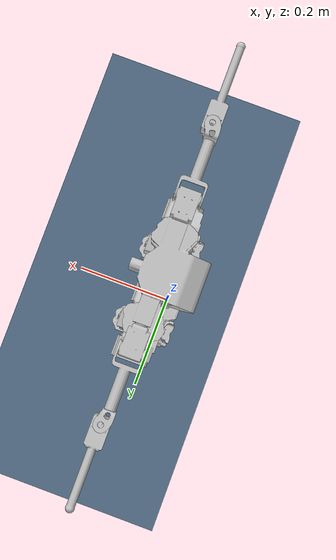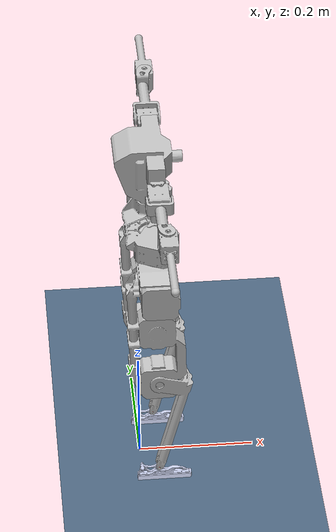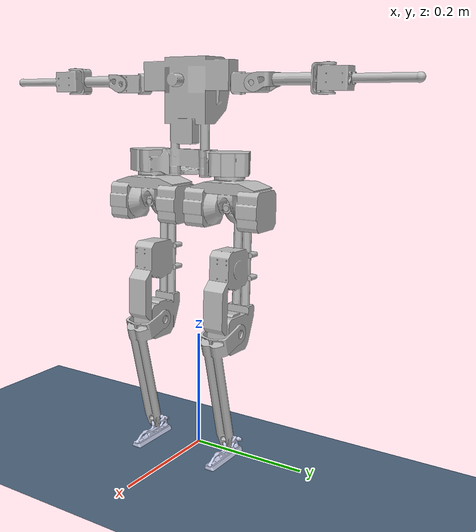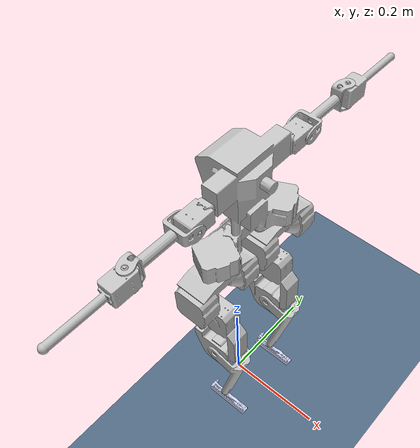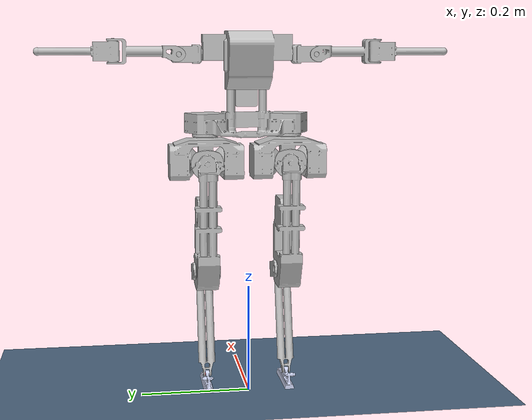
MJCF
<mujoco model="bruce_op">
    <compiler angle="radian" meshdir="meshes" autolimits="false" inertiafromgeom="false"/>

    <option timestep="0.001" gravity="0 0 -9.81" tolerance="1e-05" cone="elliptic" jacobian="dense" solver="Newton"  noslip_iterations="10" integrator="Euler" iterations="30" impratio="10.0"/>
    <option>
      <flag override="enable" gravity="enable"/>
    </option>

    <asset>
        <mesh name="base_link" file="base_link.STL"/>
        <mesh name="ankle_pitch_link_l" file="ankle_pitch_link_l.stl"/>
        <mesh name="ankle_pitch_link_r" file="ankle_pitch_link_r.stl"/>
        <mesh name="elbow_pitch_link_l" file="elbow_pitch_link_l.stl"/>
        <mesh name="elbow_pitch_link_r" file="elbow_pitch_link_r.stl"/>
        <mesh name="hip_pitch_link_l" file="hip_pitch_link_l.stl"/>
        <mesh name="hip_pitch_link_r" file="hip_pitch_link_r.stl"/>
        <mesh name="hip_roll_link_l" file="hip_roll_link_l.stl"/>
        <mesh name="hip_roll_link_r" file="hip_roll_link_r.stl"/>
        <mesh name="hip_yaw_link_l" file="hip_yaw_link_l.stl"/>
        <mesh name="hip_yaw_link_r" file="hip_yaw_link_r.stl"/>
        <mesh name="knee_pitch_link_l" file="knee_pitch_link_l.stl"/>
        <mesh name="knee_pitch_link_r" file="knee_pitch_link_r.stl"/>
        <mesh name="shoulder_pitch_link_l" file="shoulder_pitch_link_l.stl"/>
        <mesh name="shoulder_pitch_link_r" file="shoulder_pitch_link_r.stl"/>
        <mesh name="shoulder_roll_link_l" file="shoulder_roll_link_l.stl"/>
        <mesh name="shoulder_roll_link_r" file="shoulder_roll_link_r.stl"/>

        <texture name="texplane" type="2d" builtin="checker" width="512" height="512" rgb1="0.1 0.2 0.3" rgb2="0.5 0.6 0.7" mark="edge" markrgb="1 1 1" />
		    <material name="MatLink"  reflectance="0.5" specular="1" shininess="0.3" rgba="0.5 0.5 0.5 1"/>
        <material name="MatPlane" texture="texplane" reflectance="0" texrepeat="1 1" texuniform="true"/>
    </asset>

    <default>
      <joint limited="false" damping="2" armature="0.1" stiffness="0" frictionloss="0.2"/>
      <motor gear="1 0 0 0 0 0" ctrllimited="false" ctrlrange="-100 100"/>
    </default>

    <!-- Ref:https://github.com/google-deepmind/mujoco_menagerie/blob/main/robotis_op3/op3.xml -->

    <visual>
      <global fovy="45" linewidth="2" glow="0.3"/>
      <quality shadowsize="4096" numslices="48"/>
      <map stiffness="50" stiffnessrot="100"/>
      <scale forcewidth="0.075" contactwidth="0.2" contactheight="0.1" connect="0.1" com="0.2" jointlength="0.25" jointwidth="0.05"
             actuatorlength="0.5" actuatorwidth="0.3" framelength="1" framewidth="0.03"/>
      <rgba haze="0.6 0.8 0.9 1" force="1 0 0 0.5" com="0 0 1 1"/>
    </visual>

    <worldbody>
        <light name="spotlight" mode="targetbodycom" target="body_link" pos="10 -10 10" diffuse="1.0 1.0 1.0" specular="0.0 0.0 0.0" castshadow="false"/>

		    <geom name="Ground" type="plane" pos="0 0 0" material="MatPlane" size="0 0 1" condim="3"/>

        <body name="body_link" pos="0 0 0.47">
    		<freejoint/>
            <inertial pos="0.02259605 -0.00011305 0.06140054" mass="1.31688922" diaginertia="0.0133543 0.01023631 0.005471"/>
            <geom name="base_link" type="mesh" mesh="base_link" rgba="0.752941176 0.752941176 0.752941176 1"/>

            <!-- LEFT LEG -->
            <body name="hip_yaw_link_l" pos="0.029216 0.0758557 -0.039765" quat="0.707107 0 0 -0.707107">
                <inertial pos="0 -0.00020849 0.00528032" quat="0.518836 0.480432 0.518756 0.480506" mass="0.637386" diaginertia="0.00161868 0.00152047 0.0004852"/>
                <joint name="hip_yaw_l" pos="0 0 0" axis="0 0 1" limited="true" range="-0.785375 0.785375"/>
                <geom type="mesh" rgba="0.752941 0.752941 0.752941 1" mesh="hip_yaw_link_l" contype="0" conaffinity="0"/>
                <body name="hip_roll_link_l" quat="0.500001 -0.499999 0.500001 0.499999">
                  <inertial pos="-1.51e-07 0 6.88e-06" mass="0.05" diaginertia="1e-05 1e-05 1e-05"/>
                  <joint name="hip_roll_l" pos="0 0 0" axis="0 0 1" limited="true" range="-0.785375 0.785375"/>
                  <geom type="mesh" rgba="0.752941 0.752941 0.752941 1" mesh="hip_roll_link_l" contype="0" conaffinity="0"/>
                  <body name="hip_pitch_link_l" quat="0.707107 0.707107 0 0">
                    <inertial pos="0.142447 -0.00832054 0.00049317" quat="-0.002203 0.702817 0.024599 0.710942" mass="0.720628" diaginertia="0.018195 0.0179541 0.000461885"/>
                    <joint name="hip_pitch_l" pos="0 0 0" axis="0 0 1" limited="true" range="-1.57075 1.57075"/>
                    <geom type="mesh" rgba="0.752941 0.752941 0.752941 1" mesh="hip_pitch_link_l"/>
                    <body name="knee_pitch_link_l" pos="0.204949 0 0">
                      <inertial pos="0.0730996 0.0178102 -0.00219767" quat="0.0505999 0.70058 0.00930476 0.711716" mass="0.0952654" diaginertia="0.00107995 0.00101966 0.000104635"/>
                      <joint name="knee_pitch_l" pos="0 0 0" axis="0 0 1" limited="true" range="-1.57075 1.57075"/>
                      <geom type="mesh" rgba="0.752941 0.752941 0.752941 1" mesh="knee_pitch_link_l"/>
                      <body name="ankle_pitch_link_l" pos="0.199881 0 0">
                        <inertial pos="0.0123398 0.00253004 -0.00030441" quat="0.455603 0.546571 -0.442281 0.545962" mass="0.0274829" diaginertia="2.60237e-05 2.09939e-05 5.69233e-06"/>
                        <joint name="ankle_pitch_l" pos="0 0 0" axis="0 0 1" limited="true" range="-1.57075 1.57075"/>
                        <geom type="mesh" rgba="0.792157 0.819608 0.933333 1" mesh="ankle_pitch_link_l"/>
        								<site name="lfoot_sensor" type="sphere" pos="0 0 0" size="0.005" rgba="1 0 0 1"/>
                      </body>
                    </body>
                  </body>
                </body>
              </body>

            <!-- RIGHT LEG -->
            <body name="hip_yaw_link_r" pos="0.029216 -0.0758557 -0.039765" quat="0.707107 0 0 -0.707107">
                <inertial pos="2.71e-06 -0.00024824 0.00522427" quat="0.517691 0.482114 0.518083 0.480784" mass="0.637563" diaginertia="0.0016174 0.00152078 0.000485406"/>
                <joint name="hip_yaw_r" pos="0 0 0" axis="0 0 1" limited="true" range="-0.785375 0.785375"/>
                <geom type="mesh" rgba="0.752941 0.752941 0.752941 1" mesh="hip_yaw_link_r" contype="0" conaffinity="0"/>
                <body name="hip_roll_link_r" quat="0.5 -0.5 0.5 0.5">
                  <inertial pos="-1.51e-07 0 6.88e-06" mass="0.05" diaginertia="1e-05 1e-05 1e-05"/>
                  <joint name="hip_roll_r" pos="0 0 0" axis="0 0 1" limited="true" range="-0.785375 0.785375"/>
                  <geom type="mesh" rgba="0.752941 0.752941 0.752941 1" mesh="hip_roll_link_r" contype="0" conaffinity="0"/>
                  <body name="hip_pitch_link_r" quat="0.707107 0.707107 0 0">
                    <inertial pos="0.140714 -0.0086817 0.00167429" quat="-0.0210718 0.710934 0.00543456 0.702922" mass="0.72849" diaginertia="0.0181996 0.0179488 0.000479326"/>
                    <joint name="hip_pitch_r" pos="0 0 0" axis="0 0 1" limited="true" range="-1.57075 1.57075"/>
                    <geom type="mesh" rgba="0.752941 0.752941 0.752941 1" mesh="hip_pitch_link_r"/>
                    <body name="knee_pitch_link_r" pos="0.204949 0 0">
                      <inertial pos="0.0729308 0.0174645 0.00216432" quat="-0.0124752 0.71085 -0.0538621 0.701167" mass="0.0956654" diaginertia="0.00108397 0.00102192 0.000106307"/>
                      <joint name="knee_pitch_r" pos="0 0 0" axis="0 0 1" limited="true" range="-1.57075 1.57075"/>
                      <geom type="mesh" rgba="0.752941 0.752941 0.752941 1" mesh="knee_pitch_link_r"/>
                      <body name="ankle_pitch_link_r" pos="0.199881 0 0">
                        <inertial pos="0.0120775 0.0019746 0.00029511" quat="0.443128 0.545146 -0.456612 0.545855" mass="0.0276265" diaginertia="2.58838e-05 2.09859e-05 5.64035e-06"/>
                        <joint name="ankle_pitch_r" pos="0 0 0" axis="0 0 1" limited="true" range="-1.57075 1.57075"/>
                        <geom type="mesh" rgba="0.792157 0.819608 0.933333 1" mesh="ankle_pitch_link_r"/>
        								<site name="rfoot_sensor" type="sphere" pos="0 0 0" size="0.005" rgba="1 0 0 1"/>
                      </body>
                    </body>
                  </body>
                </body>
              </body>

              <!-- LEFT ARM -->
            <body name="shoulder_pitch_link_l" pos="0.029216 0.12375 0.152985" quat="0.5 -0.5 0.5 0.5">
              <inertial pos="0 0.00038323 -0.0141368" quat="0.999984 -0.0057278 0 0" mass="0.0493169" diaginertia="2.507e-05 2.40321e-05 8.31794e-06"/>
              <joint name="shoulder_pitch_l" pos="0 0 0" axis="0 0 1" limited="true" range="-1.57075 1.57075"/>
              <geom type="mesh" rgba="0.752941 0.752941 0.752941 1" mesh="shoulder_pitch_link_l"/>
              <body name="shoulder_roll_link_l" quat="0.5 0.5 -0.5 0.5">
                <inertial pos="0.0570939 0.00419463 0.00094155" quat="0.207025 0.693936 0.171489 0.667971" mass="0.0313652" diaginertia="0.000165195 0.000164406 9.52871e-06"/>
                <joint name="shoulder_roll_l" pos="0 0 0" axis="0 0 1" limited="true" range="-1.57075 1.57075"/>
                <geom type="mesh" rgba="0.752941 0.752941 0.752941 1" mesh="shoulder_roll_link_l"/>
                <body name="elbow_pitch_link_l" pos="0.1146 0.005 0.005" quat="0.707107 -0.707107 0 0">
                  <inertial pos="0.0217884 0 0.0003604" quat="0.499291 0.500708 0.500708 0.499291" mass="0.0524404" diaginertia="7.261e-05 7.10305e-05 7.52949e-06"/>
                  <joint name="elbow_pitch_l" pos="0 0 0" axis="0 0 1" limited="true" range="-1.57075 1.57075"/>
                  <geom type="mesh" rgba="0.752941 0.752941 0.752941 1" mesh="elbow_pitch_link_l"/>
                </body>
              </body>
            </body>

          <!-- RIGHT ARM -->
          <body name="shoulder_pitch_link_r" pos="0.029216 -0.12375 0.152985" quat="0.5 0.5 -0.5 0.5">
              <inertial pos="0 -0.00038323 -0.0141368" quat="0.999984 0.0057278 0 0" mass="0.0493169" diaginertia="2.507e-05 2.40321e-05 8.31794e-06"/>
              <joint name="shoulder_pitch_r" pos="0 0 0" axis="0 0 1" limited="true" range="-1.57075 1.57075"/>
              <geom type="mesh" rgba="0.752941 0.752941 0.752941 1" mesh="shoulder_pitch_link_r"/>
              <body name="shoulder_roll_link_r" quat="0.5 0.5 -0.5 0.5">
                <inertial pos="0.0570939 -0.00419463 0.00093738" quat="-0.205082 0.694437 -0.169487 0.66856" mass="0.024" diaginertia="0.000126403 0.000125807 7.29e-06"/>
                <joint name="shoulder_roll_r" pos="0 0 0" axis="0 0 1" limited="true" range="-1.57075 1.57075"/>
                <geom type="mesh" rgba="0.752941 0.752941 0.752941 1" mesh="shoulder_roll_link_r"/>
                <body name="elbow_pitch_link_r" pos="0.1146 -0.005 0.005" quat="0.707107 0.707107 0 0">
                  <inertial pos="0.0217884 0 0.0003604" quat="0.499291 0.500708 0.500708 0.499291" mass="0.0524404" diaginertia="7.261e-05 7.10305e-05 7.52949e-06"/>
                  <joint name="elbow_pitch_r" pos="0 0 0" axis="0 0 1" limited="true" range="-1.57075 1.57075"/>
                  <geom type="mesh" rgba="0.752941 0.752941 0.752941 1" mesh="elbow_pitch_link_r"/>
                </body>
              </body>
            </body>
        </body>
    </worldbody>

    <actuator>
      <motor name="hip_yaw_l_act" ctrllimited="false" gear="1 0 0 0 0 0" joint="hip_yaw_l"/>
      <motor name="hip_roll_l_act" ctrllimited="false" gear="1 0 0 0 0 0" joint="hip_roll_l"/>
      <motor name="hip_pitch_l_act" ctrllimited="false" gear="1 0 0 0 0 0" joint="hip_pitch_l"/>
      <motor name="knee_pitch_l_act" ctrllimited="false" gear="1 0 0 0 0 0" joint="knee_pitch_l"/>
      <motor name="ankle_pitch_l_act" ctrllimited="false" gear="1 0 0 0 0 0" joint="ankle_pitch_l"/>
      <motor name="hip_yaw_r_act" ctrllimited="false" gear="1 0 0 0 0 0" joint="hip_yaw_r"/>
      <motor name="hip_roll_r_act" ctrllimited="false" gear="1 0 0 0 0 0" joint="hip_roll_r"/>
      <motor name="hip_pitch_r_act" ctrllimited="false" gear="1 0 0 0 0 0" joint="hip_pitch_r"/>
      <motor name="knee_pitch_r_act" ctrllimited="false" gear="1 0 0 0 0 0" joint="knee_pitch_r"/>
      <motor name="ankle_pitch_r_act" ctrllimited="false" gear="1 0 0 0 0 0" joint="ankle_pitch_r"/>
      <motor name="shoulder_pitch_l_act" ctrllimited="false" gear="1 0 0 0 0 0" joint="shoulder_pitch_l"/>
      <motor name="shoulder_roll_l_act" ctrllimited="false" gear="1 0 0 0 0 0" joint="shoulder_roll_l"/>
      <motor name="elbow_pitch_l_act" ctrllimited="false" gear="1 0 0 0 0 0" joint="elbow_pitch_l"/>
      <motor name="shoulder_pitch_r_act" ctrllimited="false" gear="1 0 0 0 0 0" joint="shoulder_pitch_r"/>
      <motor name="shoulder_roll_r_act" ctrllimited="false" gear="1 0 0 0 0 0" joint="shoulder_roll_r"/>
      <motor name="elbow_pitch_r_act" ctrllimited="false" gear="1 0 0 0 0 0" joint="elbow_pitch_r"/>
    </actuator>

</mujoco>
